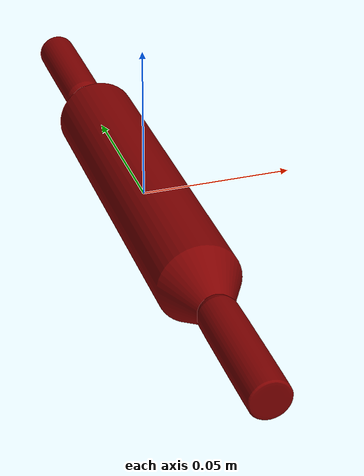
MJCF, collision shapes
<mujoco model="rolling_pin_3">
  <asset>
    <mesh file="visual/model_normalized_0.obj" name="model_normalized_0_vis" scale="0.23000000000000004 0.23000000000000004 0.23000000000000004" refquat="0.7071067811865475 0.0 0.0 0.7071067811865476"/>
    <mesh file="visual/model_normalized_1.obj" name="model_normalized_1_vis" scale="0.23000000000000004 0.23000000000000004 0.23000000000000004" refquat="0.7071067811865475 0.0 0.0 0.7071067811865476"/>
    <texture type="2d" name="image0" file="visual/image0.png"/>
    <texture type="2d" name="image3" file="visual/image3.png"/>
    <material name="Handle_MAT" texture="image0" specular="0.5" shininess="0.25"/>
    <material name="Pin_MAT" texture="image3" specular="0.5" shininess="0.25"/>
    <mesh file="collision/collision_mesh_collision_0.obj" name="rolling_collision_mesh_0" scale="0.23000000000000004 0.23000000000000004 0.23000000000000004" refquat="0.7071067811865475 0.0 0.0 0.7071067811865476"/>
    <mesh file="collision/collision_mesh_collision_1.obj" name="rolling_collision_mesh_1" scale="0.23000000000000004 0.23000000000000004 0.23000000000000004" refquat="0.7071067811865475 0.0 0.0 0.7071067811865476"/>
    <mesh file="collision/collision_mesh_collision_2.obj" name="rolling_collision_mesh_2" scale="0.23000000000000004 0.23000000000000004 0.23000000000000004" refquat="0.7071067811865475 0.0 0.0 0.7071067811865476"/>
  </asset>
  <default>
    <default class="region">
      <geom group="1" conaffinity="0" contype="0" rgba="0 1 0 0"/>
    </default>
    <default class="collision">
      <geom group="0" rgba="0.5 0 0 0.5" density="1000.0"/>
    </default>
  </default>
  <worldbody>
    <body>
      <body name="object">
        <geom solimp="0.998 0.998 0.001" solref="0.001 1" density="100" friction="0.95 0.3 0.1" type="mesh" mesh="model_normalized_0_vis" conaffinity="0" contype="0" group="1" material="Pin_MAT"/>
        <geom solimp="0.998 0.998 0.001" solref="0.001 1" density="100" friction="0.95 0.3 0.1" type="mesh" mesh="model_normalized_1_vis" conaffinity="0" contype="0" group="1" material="Handle_MAT"/>
        <geom class="region" name="reg_bbox" type="box" pos="0.0 -2.1528000000031746e-06 0.0" size="0.013355414600000002 0.11499784720000002 0.013355419200000003"/>
        <geom mesh="rolling_collision_mesh_0" type="mesh" class="collision"/>
        <geom mesh="rolling_collision_mesh_1" type="mesh" class="collision"/>
        <geom mesh="rolling_collision_mesh_2" type="mesh" class="collision"/>
      </body>
    </body>
  </worldbody>
</mujoco>
